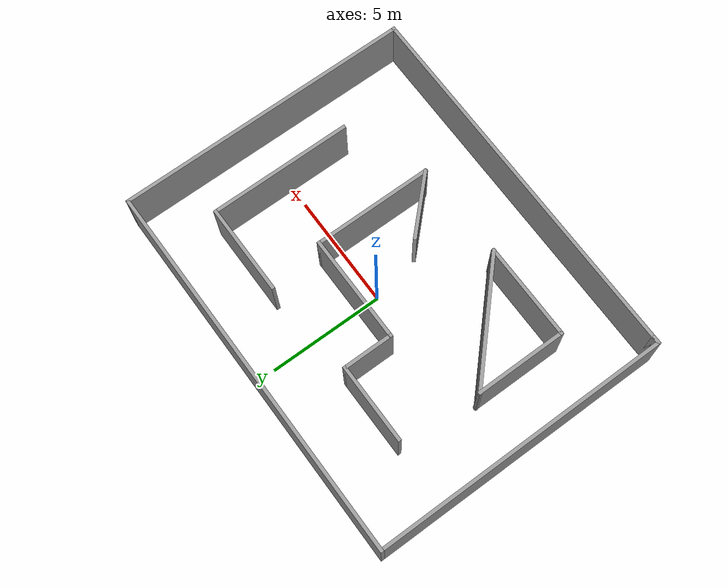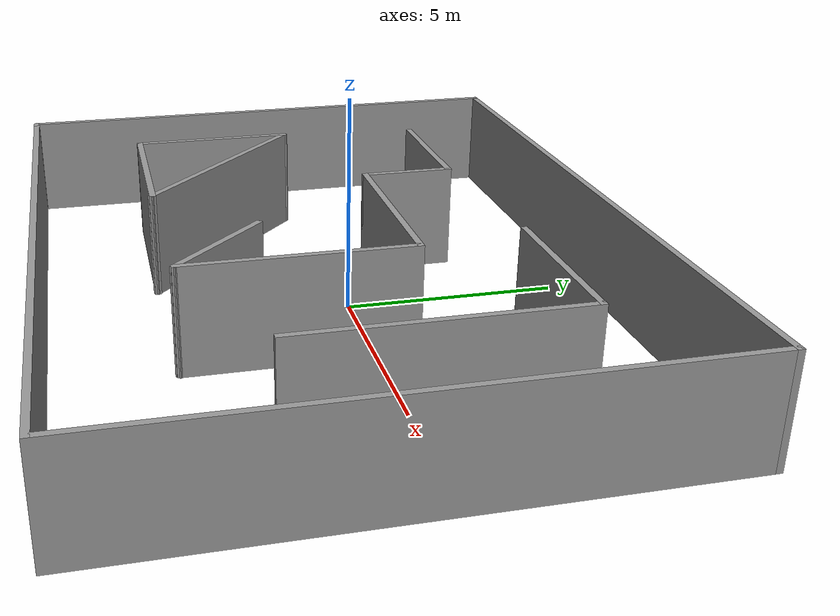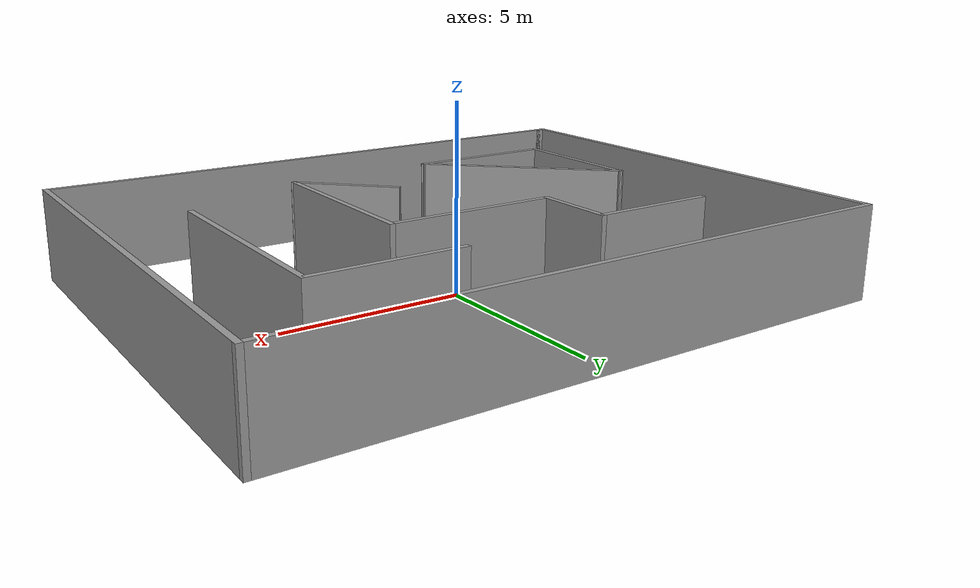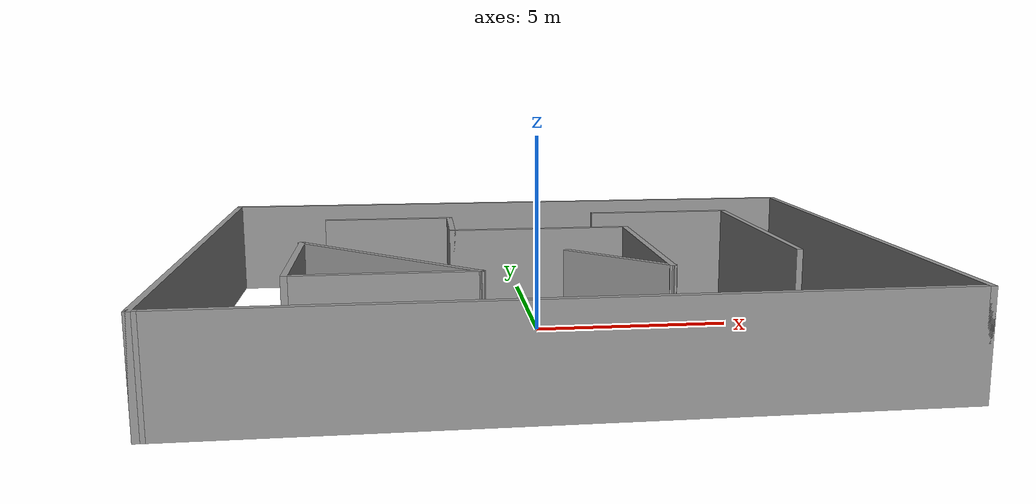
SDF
<?xml version='1.0'?>
<sdf version='1.7'>
  <model name='trial3'>
    <pose>7e-06 -0.525548 0 0 -0 0</pose>
    <link name='Wall_0'>
      <collision name='Wall_0_Collision'>
        <geometry>
          <box>
            <size>16.5 0.15 2.5</size>
          </box>
        </geometry>
        <pose>0 0 1.25 0 -0 0</pose>
      </collision>
      <visual name='Wall_0_Visual'>
        <pose>0 0 1.25 0 -0 0</pose>
        <geometry>
          <box>
            <size>16.5 0.15 2.5</size>
          </box>
        </geometry>
        <material>
          <script>
            <uri>file://media/materials/scripts/gazebo.material</uri>
            <name>Gazebo/Grey</name>
          </script>
          <ambient>1 1 1 1</ambient>
        </material>
        <meta>
          <layer>0</layer>
        </meta>
      </visual>
      <pose>0.125 -6.425 0 0 -0 0</pose>
    </link>
    <link name='Wall_1'>
      <collision name='Wall_1_Collision'>
        <geometry>
          <box>
            <size>13 0.15 2.5</size>
          </box>
        </geometry>
        <pose>0 0 1.25 0 -0 0</pose>
      </collision>
      <visual name='Wall_1_Visual'>
        <pose>0 0 1.25 0 -0 0</pose>
        <geometry>
          <box>
            <size>13 0.15 2.5</size>
          </box>
        </geometry>
        <material>
          <script>
            <uri>file://media/materials/scripts/gazebo.material</uri>
            <name>Gazebo/Grey</name>
          </script>
          <ambient>1 1 1 1</ambient>
        </material>
        <meta>
          <layer>0</layer>
        </meta>
      </visual>
      <pose>8.3 0 0 0 -0 1.5708</pose>
    </link>
    <link name='Wall_10'>
      <collision name='Wall_10_Collision'>
        <geometry>
          <box>
            <size>3.5 0.15 2.5</size>
          </box>
        </geometry>
        <pose>0 0 1.25 0 -0 0</pose>
      </collision>
      <visual name='Wall_10_Visual'>
        <pose>0 0 1.25 0 -0 0</pose>
        <geometry>
          <box>
            <size>3.5 0.15 2.5</size>
          </box>
        </geometry>
        <material>
          <script>
            <uri>file://media/materials/scripts/gazebo.material</uri>
            <name>Gazebo/Grey</name>
          </script>
          <ambient>1 1 1 1</ambient>
        </material>
        <meta>
          <layer>0</layer>
        </meta>
      </visual>
      <pose>-3.80359 3.55613 0 0 -0 0</pose>
    </link>
    <link name='Wall_11'>
      <collision name='Wall_11_Collision'>
        <geometry>
          <box>
            <size>2.25 0.15 2.5</size>
          </box>
        </geometry>
        <pose>0 0 1.25 0 -0 0</pose>
      </collision>
      <visual name='Wall_11_Visual'>
        <pose>0 0 1.25 0 -0 0</pose>
        <geometry>
          <box>
            <size>2.25 0.15 2.5</size>
          </box>
        </geometry>
        <material>
          <script>
            <uri>file://media/materials/scripts/gazebo.material</uri>
            <name>Gazebo/Grey</name>
          </script>
          <ambient>1 1 1 1</ambient>
        </material>
        <meta>
          <layer>0</layer>
        </meta>
      </visual>
      <pose>-2.12859 2.50613 0 0 -0 -1.5708</pose>
    </link>
    <link name='Wall_12'>
      <collision name='Wall_12_Collision'>
        <geometry>
          <box>
            <size>4.75 0.15 2.5</size>
          </box>
        </geometry>
        <pose>0 0 1.25 0 -0 0</pose>
      </collision>
      <visual name='Wall_12_Visual'>
        <pose>0 0 1.25 0 -0 0</pose>
        <geometry>
          <box>
            <size>4.75 0.15 2.5</size>
          </box>
        </geometry>
        <material>
          <script>
            <uri>file://media/materials/scripts/gazebo.material</uri>
            <name>Gazebo/Grey</name>
          </script>
          <ambient>1 1 1 1</ambient>
        </material>
        <meta>
          <layer>0</layer>
        </meta>
      </visual>
      <pose>0.171409 1.45613 0 0 -0 0</pose>
    </link>
    <link name='Wall_13'>
      <collision name='Wall_13_Collision'>
        <geometry>
          <box>
            <size>5.25 0.15 2.5</size>
          </box>
        </geometry>
        <pose>0 0 1.25 0 -0 0</pose>
      </collision>
      <visual name='Wall_13_Visual'>
        <pose>0 0 1.25 0 -0 0</pose>
        <geometry>
          <box>
            <size>5.25 0.15 2.5</size>
          </box>
        </geometry>
        <material>
          <script>
            <uri>file://media/materials/scripts/gazebo.material</uri>
            <name>Gazebo/Grey</name>
          </script>
          <ambient>1 1 1 1</ambient>
        </material>
        <meta>
          <layer>0</layer>
        </meta>
      </visual>
      <pose>2.47141 -1.09387 0 0 -0 -1.5708</pose>
    </link>
    <link name='Wall_14'>
      <collision name='Wall_14_Collision'>
        <geometry>
          <box>
            <size>3 0.15 2.5</size>
          </box>
        </geometry>
        <pose>0 0 1.25 0 -0 0</pose>
      </collision>
      <visual name='Wall_14_Visual'>
        <pose>0 0 1.25 0 -0 0</pose>
        <geometry>
          <box>
            <size>3 0.15 2.5</size>
          </box>
        </geometry>
        <material>
          <script>
            <uri>file://media/materials/scripts/gazebo.material</uri>
            <name>Gazebo/Grey</name>
          </script>
          <ambient>1 1 1 1</ambient>
        </material>
        <meta>
          <layer>0</layer>
        </meta>
      </visual>
      <pose>1.46378 -2.63624 0 0 -0 2.35619</pose>
    </link>
    <link name='Wall_18'>
      <collision name='Wall_18_Collision'>
        <geometry>
          <box>
            <size>4 0.15 2.5</size>
          </box>
        </geometry>
        <pose>0 0 1.25 0 -0 0</pose>
      </collision>
      <visual name='Wall_18_Visual'>
        <pose>0 0 1.25 0 -0 0</pose>
        <geometry>
          <box>
            <size>4 0.15 2.5</size>
          </box>
        </geometry>
        <material>
          <script>
            <uri>file://media/materials/scripts/gazebo.material</uri>
            <name>Gazebo/Grey</name>
          </script>
          <ambient>1 1 1 1</ambient>
        </material>
        <meta>
          <layer>0</layer>
        </meta>
      </visual>
      <pose>3.99147 3.92831 0 0 -0 0</pose>
    </link>
    <link name='Wall_19'>
      <collision name='Wall_19_Collision'>
        <geometry>
          <box>
            <size>6.25 0.15 2.5</size>
          </box>
        </geometry>
        <pose>0 0 1.25 0 -0 0</pose>
      </collision>
      <visual name='Wall_19_Visual'>
        <pose>0 0 1.25 0 -0 0</pose>
        <geometry>
          <box>
            <size>6.25 0.15 2.5</size>
          </box>
        </geometry>
        <material>
          <script>
            <uri>file://media/materials/scripts/gazebo.material</uri>
            <name>Gazebo/Grey</name>
          </script>
          <ambient>1 1 1 1</ambient>
        </material>
        <meta>
          <layer>0</layer>
        </meta>
      </visual>
      <pose>5.91647 0.878306 0 0 -0 -1.5708</pose>
    </link>
    <link name='Wall_2'>
      <collision name='Wall_2_Collision'>
        <geometry>
          <box>
            <size>16.75 0.15 2.5</size>
          </box>
        </geometry>
        <pose>0 0 1.25 0 -0 0</pose>
      </collision>
      <visual name='Wall_2_Visual'>
        <pose>0 0 1.25 0 -0 0</pose>
        <geometry>
          <box>
            <size>16.75 0.15 2.5</size>
          </box>
        </geometry>
        <material>
          <script>
            <uri>file://media/materials/scripts/gazebo.material</uri>
            <name>Gazebo/Grey</name>
          </script>
          <ambient>1 1 1 1</ambient>
        </material>
        <meta>
          <layer>0</layer>
        </meta>
      </visual>
      <pose>0 6.425 0 0 -0 3.14159</pose>
    </link>
    <link name='Wall_3'>
      <collision name='Wall_3_Collision'>
        <geometry>
          <box>
            <size>13 0.15 2.5</size>
          </box>
        </geometry>
        <pose>0 0 1.25 0 -0 0</pose>
      </collision>
      <visual name='Wall_3_Visual'>
        <pose>0 0 1.25 0 -0 0</pose>
        <geometry>
          <box>
            <size>13 0.15 2.5</size>
          </box>
        </geometry>
        <material>
          <script>
            <uri>file://media/materials/scripts/gazebo.material</uri>
            <name>Gazebo/Grey</name>
          </script>
          <ambient>1 1 1 1</ambient>
        </material>
        <meta>
          <layer>0</layer>
        </meta>
      </visual>
      <pose>-8.3 0 0 0 -0 -1.5708</pose>
    </link>
    <link name='Wall_4'>
      <collision name='Wall_4_Collision'>
        <geometry>
          <box>
            <size>0.4 0.15 2.5</size>
          </box>
        </geometry>
        <pose>0 0 1.25 0 -0 0</pose>
      </collision>
      <visual name='Wall_4_Visual'>
        <pose>0 0 1.25 0 -0 0</pose>
        <geometry>
          <box>
            <size>0.4 0.15 2.5</size>
          </box>
        </geometry>
        <material>
          <script>
            <uri>file://media/materials/scripts/gazebo.material</uri>
            <name>Gazebo/Grey</name>
          </script>
          <ambient>1 1 1 1</ambient>
        </material>
        <meta>
          <layer>0</layer>
        </meta>
      </visual>
      <pose>-8.175 -6.425 0 0 -0 0</pose>
    </link>
    <link name='Wall_6'>
      <collision name='Wall_6_Collision'>
        <geometry>
          <box>
            <size>4 0.15 2.5</size>
          </box>
        </geometry>
        <pose>0 0 1.25 0 -0 0</pose>
      </collision>
      <visual name='Wall_6_Visual'>
        <pose>0 0 1.25 0 -0 0</pose>
        <geometry>
          <box>
            <size>4 0.15 2.5</size>
          </box>
        </geometry>
        <material>
          <script>
            <uri>file://media/materials/scripts/gazebo.material</uri>
            <name>Gazebo/Grey</name>
          </script>
          <ambient>1 1 1 1</ambient>
        </material>
        <meta>
          <layer>0</layer>
        </meta>
      </visual>
      <pose>-5.85077 -1.81997 0 0 -0 -1.5708</pose>
    </link>
    <link name='Wall_7'>
      <collision name='Wall_7_Collision'>
        <geometry>
          <box>
            <size>4.25 0.15 2.5</size>
          </box>
        </geometry>
        <pose>0 0 1.25 0 -0 0</pose>
      </collision>
      <visual name='Wall_7_Visual'>
        <pose>0 0 1.25 0 -0 0</pose>
        <geometry>
          <box>
            <size>4.25 0.15 2.5</size>
          </box>
        </geometry>
        <material>
          <script>
            <uri>file://media/materials/scripts/gazebo.material</uri>
            <name>Gazebo/Grey</name>
          </script>
          <ambient>1 1 1 1</ambient>
        </material>
        <meta>
          <layer>0</layer>
        </meta>
      </visual>
      <pose>-3.80077 -3.74497 0 0 -0 0</pose>
    </link>
    <link name='Wall_8'>
      <collision name='Wall_8_Collision'>
        <geometry>
          <box>
            <size>5.77428 0.15 2.5</size>
          </box>
        </geometry>
        <pose>0 0 1.25 0 -0 0</pose>
      </collision>
      <visual name='Wall_8_Visual'>
        <pose>0 0 1.25 0 -0 0</pose>
        <geometry>
          <box>
            <size>5.77428 0.15 2.5</size>
          </box>
        </geometry>
        <material>
          <script>
            <uri>file://media/materials/scripts/gazebo.material</uri>
            <name>Gazebo/Grey</name>
          </script>
          <ambient>1 1 1 1</ambient>
        </material>
        <meta>
          <layer>0</layer>
        </meta>
      </visual>
      <pose>-3.80077 -1.81997 0 0 -0 2.38763</pose>
    </link>
    <static>1</static>
  </model>
</sdf>
